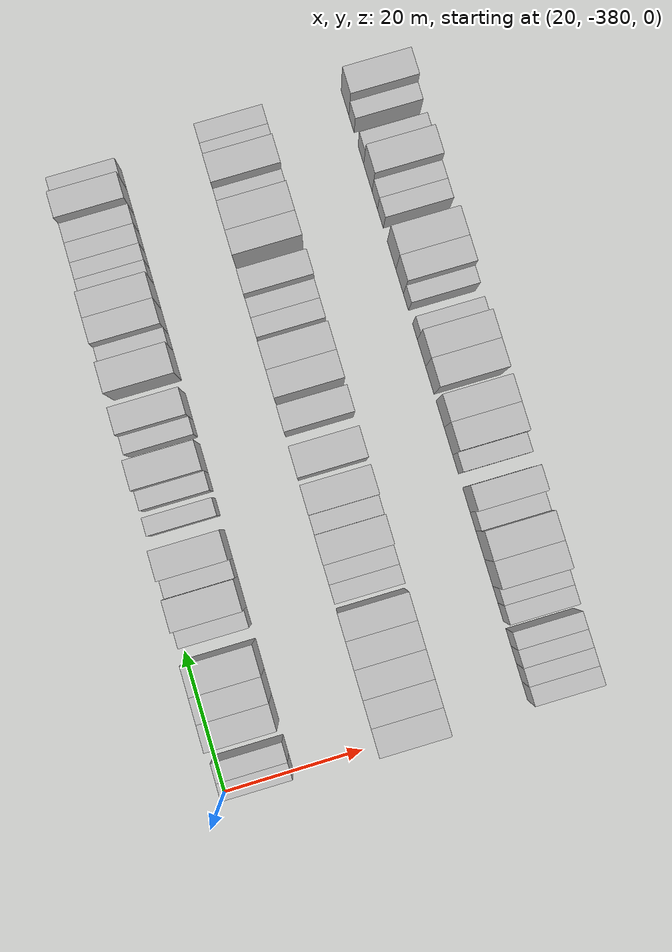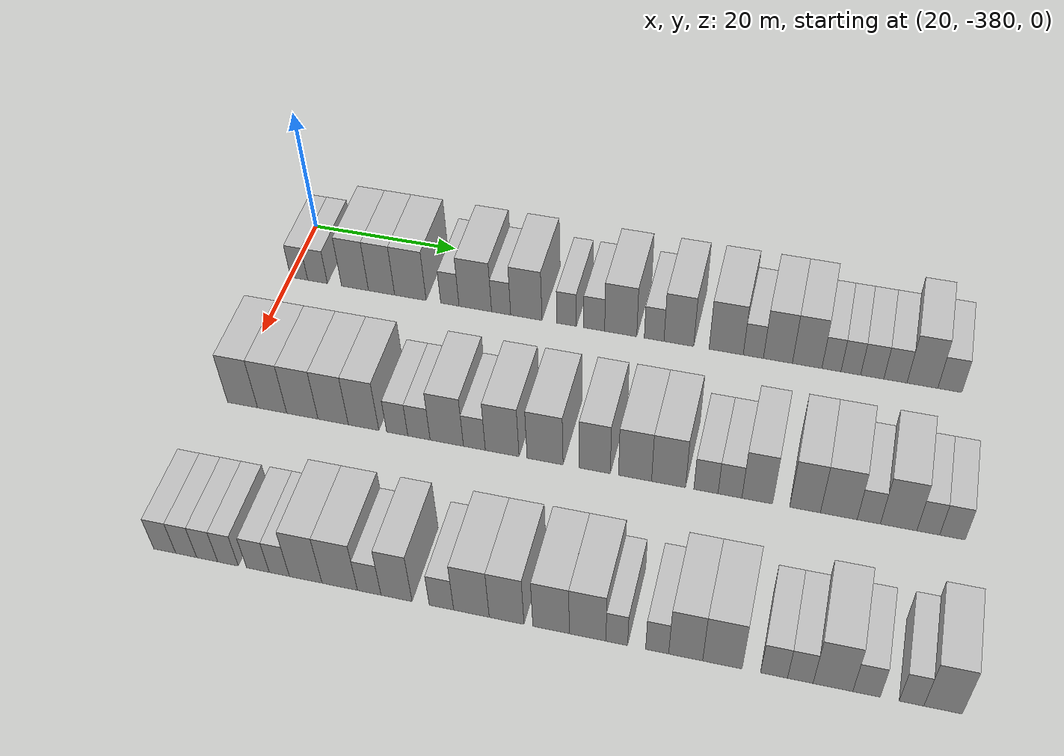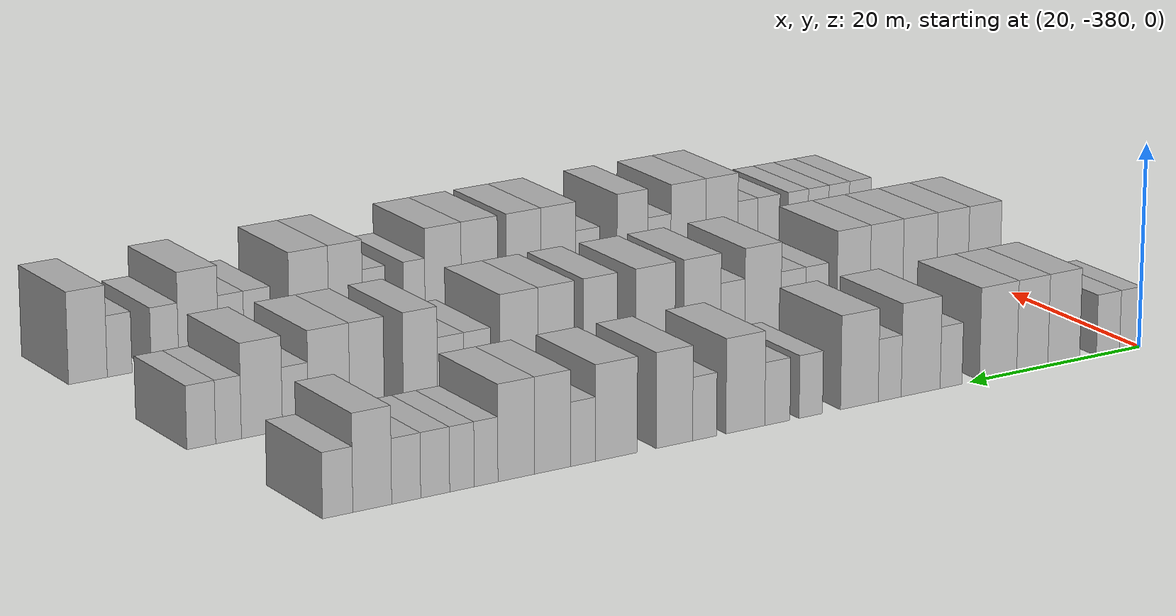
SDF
<sdf version="1.6">
 <world name="default">
  <model name="building_1">
   <static>1</static>
   <pose>25.0000 -378.7931 0 0.000000 0.000000 0.000000</pose>
   <link name="link">
    <pose>0 0 3.00 0 0 0</pose>
    <collision name="collision"><geometry><box><size>10.0000 2.4138 6.0000</size></box></geometry></collision>
    <visual name="visual">
     <cast_shadows>0</cast_shadows>
     <geometry><box><size>10.0000 2.4138 6.0000</size></box></geometry>
     <material>
      <script>
       <uri>model://HANNAS_wall/materials/scripts</uri>
       <uri>model://HANNAS_wall/materials/textures</uri>
       <name>vrc/HANNAS_wall</name>
      </script>
     </material>
    </visual>
   </link>
  </model>
  <model name="building_2">
   <static>1</static>
   <pose>25.0000 -376.1967 0 0.000000 0.000000 0.000000</pose>
   <link name="link">
    <pose>0 0 3.00 0 0 0</pose>
    <collision name="collision"><geometry><box><size>10.0000 2.7790 6.0000</size></box></geometry></collision>
    <visual name="visual">
     <cast_shadows>0</cast_shadows>
     <geometry><box><size>10.0000 2.7790 6.0000</size></box></geometry>
     <material>
      <script>
       <uri>model://HANNAS_wall/materials/scripts</uri>
       <uri>model://HANNAS_wall/materials/textures</uri>
       <name>vrc/HANNAS_wall</name>
      </script>
     </material>
    </visual>
   </link>
  </model>
  <model name="building_3">
   <static>1</static>
   <pose>25.0000 -370.9243 0 0.000000 0.000000 0.000000</pose>
   <link name="link">
    <pose>0 0 4.50 0 0 0</pose>
    <collision name="collision"><geometry><box><size>10.0000 3.7657 9.0000</size></box></geometry></collision>
    <visual name="visual">
     <cast_shadows>0</cast_shadows>
     <geometry><box><size>10.0000 3.7657 9.0000</size></box></geometry>
     <material>
      <script>
       <uri>model://HANNAS_wall/materials/scripts</uri>
       <uri>model://HANNAS_wall/materials/textures</uri>
       <name>vrc/HANNAS_wall</name>
      </script>
     </material>
    </visual>
   </link>
  </model>
  <model name="building_4">
   <static>1</static>
   <pose>25.0000 -367.2173 0 0.000000 0.000000 0.000000</pose>
   <link name="link">
    <pose>0 0 4.50 0 0 0</pose>
    <collision name="collision"><geometry><box><size>10.0000 3.6483 9.0000</size></box></geometry></collision>
    <visual name="visual">
     <cast_shadows>0</cast_shadows>
     <geometry><box><size>10.0000 3.6483 9.0000</size></box></geometry>
     <material>
      <script>
       <uri>model://HANNAS_wall/materials/scripts</uri>
       <uri>model://HANNAS_wall/materials/textures</uri>
       <name>vrc/HANNAS_wall</name>
      </script>
     </material>
    </visual>
   </link>
  </model>
  <model name="building_5">
   <static>1</static>
   <pose>25.0000 -363.2170 0 0.000000 0.000000 0.000000</pose>
   <link name="link">
    <pose>0 0 4.50 0 0 0</pose>
    <collision name="collision"><geometry><box><size>10.0000 4.3523 9.0000</size></box></geometry></collision>
    <visual name="visual">
     <cast_shadows>0</cast_shadows>
     <geometry><box><size>10.0000 4.3523 9.0000</size></box></geometry>
     <material>
      <script>
       <uri>model://HANNAS_wall/materials/scripts</uri>
       <uri>model://HANNAS_wall/materials/textures</uri>
       <name>vrc/HANNAS_wall</name>
      </script>
     </material>
    </visual>
   </link>
  </model>
  <model name="building_6">
   <static>1</static>
   <pose>25.0000 -357.7842 0 0.000000 0.000000 0.000000</pose>
   <link name="link">
    <pose>0 0 3.00 0 0 0</pose>
    <collision name="collision"><geometry><box><size>10.0000 2.5133 6.0000</size></box></geometry></collision>
    <visual name="visual">
     <cast_shadows>0</cast_shadows>
     <geometry><box><size>10.0000 2.5133 6.0000</size></box></geometry>
     <material>
      <script>
       <uri>model://HANNAS_wall/materials/scripts</uri>
       <uri>model://HANNAS_wall/materials/textures</uri>
       <name>vrc/HANNAS_wall</name>
      </script>
     </material>
    </visual>
   </link>
  </model>
  <model name="building_7">
   <static>1</static>
   <pose>25.0000 -354.3040 0 0.000000 0.000000 0.000000</pose>
   <link name="link">
    <pose>0 0 4.50 0 0 0</pose>
    <collision name="collision"><geometry><box><size>10.0000 4.4470 9.0000</size></box></geometry></collision>
    <visual name="visual">
     <cast_shadows>0</cast_shadows>
     <geometry><box><size>10.0000 4.4470 9.0000</size></box></geometry>
     <material>
      <script>
       <uri>model://HANNAS_wall/materials/scripts</uri>
       <uri>model://HANNAS_wall/materials/textures</uri>
       <name>vrc/HANNAS_wall</name>
      </script>
     </material>
    </visual>
   </link>
  </model>
  <model name="building_8">
   <static>1</static>
   <pose>25.0000 -350.7856 0 0.000000 0.000000 0.000000</pose>
   <link name="link">
    <pose>0 0 3.00 0 0 0</pose>
    <collision name="collision"><geometry><box><size>10.0000 2.5899 6.0000</size></box></geometry></collision>
    <visual name="visual">
     <cast_shadows>0</cast_shadows>
     <geometry><box><size>10.0000 2.5899 6.0000</size></box></geometry>
     <material>
      <script>
       <uri>model://HANNAS_wall/materials/scripts</uri>
       <uri>model://HANNAS_wall/materials/textures</uri>
       <name>vrc/HANNAS_wall</name>
      </script>
     </material>
    </visual>
   </link>
  </model>
  <model name="building_9">
   <static>1</static>
   <pose>25.0000 -347.3726 0 0.000000 0.000000 0.000000</pose>
   <link name="link">
    <pose>0 0 4.50 0 0 0</pose>
    <collision name="collision"><geometry><box><size>10.0000 4.2361 9.0000</size></box></geometry></collision>
    <visual name="visual">
     <cast_shadows>0</cast_shadows>
     <geometry><box><size>10.0000 4.2361 9.0000</size></box></geometry>
     <material>
      <script>
       <uri>model://HANNAS_wall/materials/scripts</uri>
       <uri>model://HANNAS_wall/materials/textures</uri>
       <name>vrc/HANNAS_wall</name>
      </script>
     </material>
    </visual>
   </link>
  </model>
  <model name="building_10">
   <static>1</static>
   <pose>25.0000 -341.9552 0 0.000000 0.000000 0.000000</pose>
   <link name="link">
    <pose>0 0 3.00 0 0 0</pose>
    <collision name="collision"><geometry><box><size>10.0000 2.5986 6.0000</size></box></geometry></collision>
    <visual name="visual">
     <cast_shadows>0</cast_shadows>
     <geometry><box><size>10.0000 2.5986 6.0000</size></box></geometry>
     <material>
      <script>
       <uri>model://HANNAS_wall/materials/scripts</uri>
       <uri>model://HANNAS_wall/materials/textures</uri>
       <name>vrc/HANNAS_wall</name>
      </script>
     </material>
    </visual>
   </link>
  </model>
  <model name="building_11">
   <static>1</static>
   <pose>25.0000 -338.2738 0 0.000000 0.000000 0.000000</pose>
   <link name="link">
    <pose>0 0 3.00 0 0 0</pose>
    <collision name="collision"><geometry><box><size>10.0000 2.7642 6.0000</size></box></geometry></collision>
    <visual name="visual">
     <cast_shadows>0</cast_shadows>
     <geometry><box><size>10.0000 2.7642 6.0000</size></box></geometry>
     <material>
      <script>
       <uri>model://HANNAS_wall/materials/scripts</uri>
       <uri>model://HANNAS_wall/materials/textures</uri>
       <name>vrc/HANNAS_wall</name>
      </script>
     </material>
    </visual>
   </link>
  </model>
  <model name="building_12">
   <static>1</static>
   <pose>25.0000 -334.7722 0 0.000000 0.000000 0.000000</pose>
   <link name="link">
    <pose>0 0 4.50 0 0 0</pose>
    <collision name="collision"><geometry><box><size>10.0000 4.2390 9.0000</size></box></geometry></collision>
    <visual name="visual">
     <cast_shadows>0</cast_shadows>
     <geometry><box><size>10.0000 4.2390 9.0000</size></box></geometry>
     <material>
      <script>
       <uri>model://HANNAS_wall/materials/scripts</uri>
       <uri>model://HANNAS_wall/materials/textures</uri>
       <name>vrc/HANNAS_wall</name>
      </script>
     </material>
    </visual>
   </link>
  </model>
  <model name="building_13">
   <static>1</static>
   <pose>25.0000 -330.3623 0 0.000000 0.000000 0.000000</pose>
   <link name="link">
    <pose>0 0 3.00 0 0 0</pose>
    <collision name="collision"><geometry><box><size>10.0000 2.5808 6.0000</size></box></geometry></collision>
    <visual name="visual">
     <cast_shadows>0</cast_shadows>
     <geometry><box><size>10.0000 2.5808 6.0000</size></box></geometry>
     <material>
      <script>
       <uri>model://HANNAS_wall/materials/scripts</uri>
       <uri>model://HANNAS_wall/materials/textures</uri>
       <name>vrc/HANNAS_wall</name>
      </script>
     </material>
    </visual>
   </link>
  </model>
  <model name="building_14">
   <static>1</static>
   <pose>25.0000 -327.1281 0 0.000000 0.000000 0.000000</pose>
   <link name="link">
    <pose>0 0 4.50 0 0 0</pose>
    <collision name="collision"><geometry><box><size>10.0000 3.8875 9.0000</size></box></geometry></collision>
    <visual name="visual">
     <cast_shadows>0</cast_shadows>
     <geometry><box><size>10.0000 3.8875 9.0000</size></box></geometry>
     <material>
      <script>
       <uri>model://HANNAS_wall/materials/scripts</uri>
       <uri>model://HANNAS_wall/materials/textures</uri>
       <name>vrc/HANNAS_wall</name>
      </script>
     </material>
    </visual>
   </link>
  </model>
  <model name="building_15">
   <static>1</static>
   <pose>25.0000 -320.9726 0 0.000000 0.000000 0.000000</pose>
   <link name="link">
    <pose>0 0 4.50 0 0 0</pose>
    <collision name="collision"><geometry><box><size>10.0000 4.4236 9.0000</size></box></geometry></collision>
    <visual name="visual">
     <cast_shadows>0</cast_shadows>
     <geometry><box><size>10.0000 4.4236 9.0000</size></box></geometry>
     <material>
      <script>
       <uri>model://HANNAS_wall/materials/scripts</uri>
       <uri>model://HANNAS_wall/materials/textures</uri>
       <name>vrc/HANNAS_wall</name>
      </script>
     </material>
    </visual>
   </link>
  </model>
  <model name="building_16">
   <static>1</static>
   <pose>25.0000 -317.4612 0 0.000000 0.000000 0.000000</pose>
   <link name="link">
    <pose>0 0 3.00 0 0 0</pose>
    <collision name="collision"><geometry><box><size>10.0000 2.5991 6.0000</size></box></geometry></collision>
    <visual name="visual">
     <cast_shadows>0</cast_shadows>
     <geometry><box><size>10.0000 2.5991 6.0000</size></box></geometry>
     <material>
      <script>
       <uri>model://HANNAS_wall/materials/scripts</uri>
       <uri>model://HANNAS_wall/materials/textures</uri>
       <name>vrc/HANNAS_wall</name>
      </script>
     </material>
    </visual>
   </link>
  </model>
  <model name="building_17">
   <static>1</static>
   <pose>25.0000 -314.3084 0 0.000000 0.000000 0.000000</pose>
   <link name="link">
    <pose>0 0 4.50 0 0 0</pose>
    <collision name="collision"><geometry><box><size>10.0000 3.7064 9.0000</size></box></geometry></collision>
    <visual name="visual">
     <cast_shadows>0</cast_shadows>
     <geometry><box><size>10.0000 3.7064 9.0000</size></box></geometry>
     <material>
      <script>
       <uri>model://HANNAS_wall/materials/scripts</uri>
       <uri>model://HANNAS_wall/materials/textures</uri>
       <name>vrc/HANNAS_wall</name>
      </script>
     </material>
    </visual>
   </link>
  </model>
  <model name="building_18">
   <static>1</static>
   <pose>25.0000 -310.5778 0 0.000000 0.000000 0.000000</pose>
   <link name="link">
    <pose>0 0 4.50 0 0 0</pose>
    <collision name="collision"><geometry><box><size>10.0000 3.7548 9.0000</size></box></geometry></collision>
    <visual name="visual">
     <cast_shadows>0</cast_shadows>
     <geometry><box><size>10.0000 3.7548 9.0000</size></box></geometry>
     <material>
      <script>
       <uri>model://HANNAS_wall/materials/scripts</uri>
       <uri>model://HANNAS_wall/materials/textures</uri>
       <name>vrc/HANNAS_wall</name>
      </script>
     </material>
    </visual>
   </link>
  </model>
  <model name="building_19">
   <static>1</static>
   <pose>25.0000 -307.4906 0 0.000000 0.000000 0.000000</pose>
   <link name="link">
    <pose>0 0 3.00 0 0 0</pose>
    <collision name="collision"><geometry><box><size>10.0000 2.4198 6.0000</size></box></geometry></collision>
    <visual name="visual">
     <cast_shadows>0</cast_shadows>
     <geometry><box><size>10.0000 2.4198 6.0000</size></box></geometry>
     <material>
      <script>
       <uri>model://HANNAS_wall/materials/scripts</uri>
       <uri>model://HANNAS_wall/materials/textures</uri>
       <name>vrc/HANNAS_wall</name>
      </script>
     </material>
    </visual>
   </link>
  </model>
  <model name="building_20">
   <static>1</static>
   <pose>25.0000 -305.0435 0 0.000000 0.000000 0.000000</pose>
   <link name="link">
    <pose>0 0 3.00 0 0 0</pose>
    <collision name="collision"><geometry><box><size>10.0000 2.4743 6.0000</size></box></geometry></collision>
    <visual name="visual">
     <cast_shadows>0</cast_shadows>
     <geometry><box><size>10.0000 2.4743 6.0000</size></box></geometry>
     <material>
      <script>
       <uri>model://HANNAS_wall/materials/scripts</uri>
       <uri>model://HANNAS_wall/materials/textures</uri>
       <name>vrc/HANNAS_wall</name>
      </script>
     </material>
    </visual>
   </link>
  </model>
  <model name="building_21">
   <static>1</static>
   <pose>25.0000 -302.3490 0 0.000000 0.000000 0.000000</pose>
   <link name="link">
    <pose>0 0 3.00 0 0 0</pose>
    <collision name="collision"><geometry><box><size>10.0000 2.9148 6.0000</size></box></geometry></collision>
    <visual name="visual">
     <cast_shadows>0</cast_shadows>
     <geometry><box><size>10.0000 2.9148 6.0000</size></box></geometry>
     <material>
      <script>
       <uri>model://HANNAS_wall/materials/scripts</uri>
       <uri>model://HANNAS_wall/materials/textures</uri>
       <name>vrc/HANNAS_wall</name>
      </script>
     </material>
    </visual>
   </link>
  </model>
  <model name="building_22">
   <static>1</static>
   <pose>25.0000 -299.4433 0 0.000000 0.000000 0.000000</pose>
   <link name="link">
    <pose>0 0 3.00 0 0 0</pose>
    <collision name="collision"><geometry><box><size>10.0000 2.8966 6.0000</size></box></geometry></collision>
    <visual name="visual">
     <cast_shadows>0</cast_shadows>
     <geometry><box><size>10.0000 2.8966 6.0000</size></box></geometry>
     <material>
      <script>
       <uri>model://HANNAS_wall/materials/scripts</uri>
       <uri>model://HANNAS_wall/materials/textures</uri>
       <name>vrc/HANNAS_wall</name>
      </script>
     </material>
    </visual>
   </link>
  </model>
  <model name="building_23">
   <static>1</static>
   <pose>25.0000 -296.0758 0 0.000000 0.000000 0.000000</pose>
   <link name="link">
    <pose>0 0 4.50 0 0 0</pose>
    <collision name="collision"><geometry><box><size>10.0000 3.8385 9.0000</size></box></geometry></collision>
    <visual name="visual">
     <cast_shadows>0</cast_shadows>
     <geometry><box><size>10.0000 3.8385 9.0000</size></box></geometry>
     <material>
      <script>
       <uri>model://HANNAS_wall/materials/scripts</uri>
       <uri>model://HANNAS_wall/materials/textures</uri>
       <name>vrc/HANNAS_wall</name>
      </script>
     </material>
    </visual>
   </link>
  </model>
  <model name="building_24">
   <static>1</static>
   <pose>25.0000 -292.6682 0 0.000000 0.000000 0.000000</pose>
   <link name="link">
    <pose>0 0 3.00 0 0 0</pose>
    <collision name="collision"><geometry><box><size>10.0000 2.9766 6.0000</size></box></geometry></collision>
    <visual name="visual">
     <cast_shadows>0</cast_shadows>
     <geometry><box><size>10.0000 2.9766 6.0000</size></box></geometry>
     <material>
      <script>
       <uri>model://HANNAS_wall/materials/scripts</uri>
       <uri>model://HANNAS_wall/materials/textures</uri>
       <name>vrc/HANNAS_wall</name>
      </script>
     </material>
    </visual>
   </link>
  </model>
  <model name="building_200">
   <static>1</static>
   <pose>47.0000 -378.0258 0 0.000000 0.000000 0.000000</pose>
   <link name="link">
    <pose>0 0 4.50 0 0 0</pose>
    <collision name="collision"><geometry><box><size>10.0000 3.9483 9.0000</size></box></geometry></collision>
    <visual name="visual">
     <cast_shadows>0</cast_shadows>
     <geometry><box><size>10.0000 3.9483 9.0000</size></box></geometry>
     <material>
      <script>
       <uri>model://HANNAS_wall/materials/scripts</uri>
       <uri>model://HANNAS_wall/materials/textures</uri>
       <name>vrc/HANNAS_wall</name>
      </script>
     </material>
    </visual>
   </link>
  </model>
  <model name="building_201">
   <static>1</static>
   <pose>47.0000 -374.1408 0 0.000000 0.000000 0.000000</pose>
   <link name="link">
    <pose>0 0 4.50 0 0 0</pose>
    <collision name="collision"><geometry><box><size>10.0000 3.8217 9.0000</size></box></geometry></collision>
    <visual name="visual">
     <cast_shadows>0</cast_shadows>
     <geometry><box><size>10.0000 3.8217 9.0000</size></box></geometry>
     <material>
      <script>
       <uri>model://HANNAS_wall/materials/scripts</uri>
       <uri>model://HANNAS_wall/materials/textures</uri>
       <name>vrc/HANNAS_wall</name>
      </script>
     </material>
    </visual>
   </link>
  </model>
  <model name="building_202">
   <static>1</static>
   <pose>47.0000 -370.1857 0 0.000000 0.000000 0.000000</pose>
   <link name="link">
    <pose>0 0 4.50 0 0 0</pose>
    <collision name="collision"><geometry><box><size>10.0000 4.0884 9.0000</size></box></geometry></collision>
    <visual name="visual">
     <cast_shadows>0</cast_shadows>
     <geometry><box><size>10.0000 4.0884 9.0000</size></box></geometry>
     <material>
      <script>
       <uri>model://HANNAS_wall/materials/scripts</uri>
       <uri>model://HANNAS_wall/materials/textures</uri>
       <name>vrc/HANNAS_wall</name>
      </script>
     </material>
    </visual>
   </link>
  </model>
  <model name="building_203">
   <static>1</static>
   <pose>47.0000 -366.1800 0 0.000000 0.000000 0.000000</pose>
   <link name="link">
    <pose>0 0 4.50 0 0 0</pose>
    <collision name="collision"><geometry><box><size>10.0000 3.9230 9.0000</size></box></geometry></collision>
    <visual name="visual">
     <cast_shadows>0</cast_shadows>
     <geometry><box><size>10.0000 3.9230 9.0000</size></box></geometry>
     <material>
      <script>
       <uri>model://HANNAS_wall/materials/scripts</uri>
       <uri>model://HANNAS_wall/materials/textures</uri>
       <name>vrc/HANNAS_wall</name>
      </script>
     </material>
    </visual>
   </link>
  </model>
  <model name="building_204">
   <static>1</static>
   <pose>47.0000 -362.2581 0 0.000000 0.000000 0.000000</pose>
   <link name="link">
    <pose>0 0 4.50 0 0 0</pose>
    <collision name="collision"><geometry><box><size>10.0000 3.9207 9.0000</size></box></geometry></collision>
    <visual name="visual">
     <cast_shadows>0</cast_shadows>
     <geometry><box><size>10.0000 3.9207 9.0000</size></box></geometry>
     <material>
      <script>
       <uri>model://HANNAS_wall/materials/scripts</uri>
       <uri>model://HANNAS_wall/materials/textures</uri>
       <name>vrc/HANNAS_wall</name>
      </script>
     </material>
    </visual>
   </link>
  </model>
  <model name="building_205">
   <static>1</static>
   <pose>47.0000 -357.9490 0 0.000000 0.000000 0.000000</pose>
   <link name="link">
    <pose>0 0 3.00 0 0 0</pose>
    <collision name="collision"><geometry><box><size>10.0000 2.6976 6.0000</size></box></geometry></collision>
    <visual name="visual">
     <cast_shadows>0</cast_shadows>
     <geometry><box><size>10.0000 2.6976 6.0000</size></box></geometry>
     <material>
      <script>
       <uri>model://HANNAS_wall/materials/scripts</uri>
       <uri>model://HANNAS_wall/materials/textures</uri>
       <name>vrc/HANNAS_wall</name>
      </script>
     </material>
    </visual>
   </link>
  </model>
  <model name="building_206">
   <static>1</static>
   <pose>47.0000 -355.1785 0 0.000000 0.000000 0.000000</pose>
   <link name="link">
    <pose>0 0 3.00 0 0 0</pose>
    <collision name="collision"><geometry><box><size>10.0000 2.8433 6.0000</size></box></geometry></collision>
    <visual name="visual">
     <cast_shadows>0</cast_shadows>
     <geometry><box><size>10.0000 2.8433 6.0000</size></box></geometry>
     <material>
      <script>
       <uri>model://HANNAS_wall/materials/scripts</uri>
       <uri>model://HANNAS_wall/materials/textures</uri>
       <name>vrc/HANNAS_wall</name>
      </script>
     </material>
    </visual>
   </link>
  </model>
  <model name="building_207">
   <static>1</static>
   <pose>47.0000 -351.6575 0 0.000000 0.000000 0.000000</pose>
   <link name="link">
    <pose>0 0 4.50 0 0 0</pose>
    <collision name="collision"><geometry><box><size>10.0000 4.1989 9.0000</size></box></geometry></collision>
    <visual name="visual">
     <cast_shadows>0</cast_shadows>
     <geometry><box><size>10.0000 4.1989 9.0000</size></box></geometry>
     <material>
      <script>
       <uri>model://HANNAS_wall/materials/scripts</uri>
       <uri>model://HANNAS_wall/materials/textures</uri>
       <name>vrc/HANNAS_wall</name>
      </script>
     </material>
    </visual>
   </link>
  </model>
  <model name="building_208">
   <static>1</static>
   <pose>47.0000 -348.1816 0 0.000000 0.000000 0.000000</pose>
   <link name="link">
    <pose>0 0 3.00 0 0 0</pose>
    <collision name="collision"><geometry><box><size>10.0000 2.7529 6.0000</size></box></geometry></collision>
    <visual name="visual">
     <cast_shadows>0</cast_shadows>
     <geometry><box><size>10.0000 2.7529 6.0000</size></box></geometry>
     <material>
      <script>
       <uri>model://HANNAS_wall/materials/scripts</uri>
       <uri>model://HANNAS_wall/materials/textures</uri>
       <name>vrc/HANNAS_wall</name>
      </script>
     </material>
    </visual>
   </link>
  </model>
  <model name="building_209">
   <static>1</static>
   <pose>47.0000 -344.7022 0 0.000000 0.000000 0.000000</pose>
   <link name="link">
    <pose>0 0 4.50 0 0 0</pose>
    <collision name="collision"><geometry><box><size>10.0000 4.2060 9.0000</size></box></geometry></collision>
    <visual name="visual">
     <cast_shadows>0</cast_shadows>
     <geometry><box><size>10.0000 4.2060 9.0000</size></box></geometry>
     <material>
      <script>
       <uri>model://HANNAS_wall/materials/scripts</uri>
       <uri>model://HANNAS_wall/materials/textures</uri>
       <name>vrc/HANNAS_wall</name>
      </script>
     </material>
    </visual>
   </link>
  </model>
  <model name="building_210">
   <static>1</static>
   <pose>47.0000 -339.3726 0 0.000000 0.000000 0.000000</pose>
   <link name="link">
    <pose>0 0 4.50 0 0 0</pose>
    <collision name="collision"><geometry><box><size>10.0000 4.4530 9.0000</size></box></geometry></collision>
    <visual name="visual">
     <cast_shadows>0</cast_shadows>
     <geometry><box><size>10.0000 4.4530 9.0000</size></box></geometry>
     <material>
      <script>
       <uri>model://HANNAS_wall/materials/scripts</uri>
       <uri>model://HANNAS_wall/materials/textures</uri>
       <name>vrc/HANNAS_wall</name>
      </script>
     </material>
    </visual>
   </link>
  </model>
  <model name="building_211">
   <static>1</static>
   <pose>47.0000 -333.2516 0 0.000000 0.000000 0.000000</pose>
   <link name="link">
    <pose>0 0 4.50 0 0 0</pose>
    <collision name="collision"><geometry><box><size>10.0000 3.7890 9.0000</size></box></geometry></collision>
    <visual name="visual">
     <cast_shadows>0</cast_shadows>
     <geometry><box><size>10.0000 3.7890 9.0000</size></box></geometry>
     <material>
      <script>
       <uri>model://HANNAS_wall/materials/scripts</uri>
       <uri>model://HANNAS_wall/materials/textures</uri>
       <name>vrc/HANNAS_wall</name>
      </script>
     </material>
    </visual>
   </link>
  </model>
  <model name="building_212">
   <static>1</static>
   <pose>47.0000 -328.3529 0 0.000000 0.000000 0.000000</pose>
   <link name="link">
    <pose>0 0 4.50 0 0 0</pose>
    <collision name="collision"><geometry><box><size>10.0000 4.0085 9.0000</size></box></geometry></collision>
    <visual name="visual">
     <cast_shadows>0</cast_shadows>
     <geometry><box><size>10.0000 4.0085 9.0000</size></box></geometry>
     <material>
      <script>
       <uri>model://HANNAS_wall/materials/scripts</uri>
       <uri>model://HANNAS_wall/materials/textures</uri>
       <name>vrc/HANNAS_wall</name>
      </script>
     </material>
    </visual>
   </link>
  </model>
  <model name="building_213">
   <static>1</static>
   <pose>47.0000 -324.3022 0 0.000000 0.000000 0.000000</pose>
   <link name="link">
    <pose>0 0 4.50 0 0 0</pose>
    <collision name="collision"><geometry><box><size>10.0000 4.0928 9.0000</size></box></geometry></collision>
    <visual name="visual">
     <cast_shadows>0</cast_shadows>
     <geometry><box><size>10.0000 4.0928 9.0000</size></box></geometry>
     <material>
      <script>
       <uri>model://HANNAS_wall/materials/scripts</uri>
       <uri>model://HANNAS_wall/materials/textures</uri>
       <name>vrc/HANNAS_wall</name>
      </script>
     </material>
    </visual>
   </link>
  </model>
  <model name="building_214">
   <static>1</static>
   <pose>47.0000 -319.8097 0 0.000000 0.000000 0.000000</pose>
   <link name="link">
    <pose>0 0 3.00 0 0 0</pose>
    <collision name="collision"><geometry><box><size>10.0000 2.8923 6.0000</size></box></geometry></collision>
    <visual name="visual">
     <cast_shadows>0</cast_shadows>
     <geometry><box><size>10.0000 2.8923 6.0000</size></box></geometry>
     <material>
      <script>
       <uri>model://HANNAS_wall/materials/scripts</uri>
       <uri>model://HANNAS_wall/materials/textures</uri>
       <name>vrc/HANNAS_wall</name>
      </script>
     </material>
    </visual>
   </link>
  </model>
  <model name="building_215">
   <static>1</static>
   <pose>47.0000 -316.9460 0 0.000000 0.000000 0.000000</pose>
   <link name="link">
    <pose>0 0 3.00 0 0 0</pose>
    <collision name="collision"><geometry><box><size>10.0000 2.8351 6.0000</size></box></geometry></collision>
    <visual name="visual">
     <cast_shadows>0</cast_shadows>
     <geometry><box><size>10.0000 2.8351 6.0000</size></box></geometry>
     <material>
      <script>
       <uri>model://HANNAS_wall/materials/scripts</uri>
       <uri>model://HANNAS_wall/materials/textures</uri>
       <name>vrc/HANNAS_wall</name>
      </script>
     </material>
    </visual>
   </link>
  </model>
  <model name="building_216">
   <static>1</static>
   <pose>47.0000 -313.7092 0 0.000000 0.000000 0.000000</pose>
   <link name="link">
    <pose>0 0 4.50 0 0 0</pose>
    <collision name="collision"><geometry><box><size>10.0000 3.6384 9.0000</size></box></geometry></collision>
    <visual name="visual">
     <cast_shadows>0</cast_shadows>
     <geometry><box><size>10.0000 3.6384 9.0000</size></box></geometry>
     <material>
      <script>
       <uri>model://HANNAS_wall/materials/scripts</uri>
       <uri>model://HANNAS_wall/materials/textures</uri>
       <name>vrc/HANNAS_wall</name>
      </script>
     </material>
    </visual>
   </link>
  </model>
  <model name="building_217">
   <static>1</static>
   <pose>47.0000 -308.0866 0 0.000000 0.000000 0.000000</pose>
   <link name="link">
    <pose>0 0 4.50 0 0 0</pose>
    <collision name="collision"><geometry><box><size>10.0000 3.6069 9.0000</size></box></geometry></collision>
    <visual name="visual">
     <cast_shadows>0</cast_shadows>
     <geometry><box><size>10.0000 3.6069 9.0000</size></box></geometry>
     <material>
      <script>
       <uri>model://HANNAS_wall/materials/scripts</uri>
       <uri>model://HANNAS_wall/materials/textures</uri>
       <name>vrc/HANNAS_wall</name>
      </script>
     </material>
    </visual>
   </link>
  </model>
  <model name="building_218">
   <static>1</static>
   <pose>47.0000 -304.1395 0 0.000000 0.000000 0.000000</pose>
   <link name="link">
    <pose>0 0 4.50 0 0 0</pose>
    <collision name="collision"><geometry><box><size>10.0000 4.2872 9.0000</size></box></geometry></collision>
    <visual name="visual">
     <cast_shadows>0</cast_shadows>
     <geometry><box><size>10.0000 4.2872 9.0000</size></box></geometry>
     <material>
      <script>
       <uri>model://HANNAS_wall/materials/scripts</uri>
       <uri>model://HANNAS_wall/materials/textures</uri>
       <name>vrc/HANNAS_wall</name>
      </script>
     </material>
    </visual>
   </link>
  </model>
  <model name="building_219">
   <static>1</static>
   <pose>47.0000 -300.6557 0 0.000000 0.000000 0.000000</pose>
   <link name="link">
    <pose>0 0 3.00 0 0 0</pose>
    <collision name="collision"><geometry><box><size>10.0000 2.6805 6.0000</size></box></geometry></collision>
    <visual name="visual">
     <cast_shadows>0</cast_shadows>
     <geometry><box><size>10.0000 2.6805 6.0000</size></box></geometry>
     <material>
      <script>
       <uri>model://HANNAS_wall/materials/scripts</uri>
       <uri>model://HANNAS_wall/materials/textures</uri>
       <name>vrc/HANNAS_wall</name>
      </script>
     </material>
    </visual>
   </link>
  </model>
  <model name="building_220">
   <static>1</static>
   <pose>47.0000 -297.2175 0 0.000000 0.000000 0.000000</pose>
   <link name="link">
    <pose>0 0 4.50 0 0 0</pose>
    <collision name="collision"><geometry><box><size>10.0000 4.1959 9.0000</size></box></geometry></collision>
    <visual name="visual">
     <cast_shadows>0</cast_shadows>
     <geometry><box><size>10.0000 4.1959 9.0000</size></box></geometry>
     <material>
      <script>
       <uri>model://HANNAS_wall/materials/scripts</uri>
       <uri>model://HANNAS_wall/materials/textures</uri>
       <name>vrc/HANNAS_wall</name>
      </script>
     </material>
    </visual>
   </link>
  </model>
  <model name="building_221">
   <static>1</static>
   <pose>47.0000 -293.8175 0 0.000000 0.000000 0.000000</pose>
   <link name="link">
    <pose>0 0 3.00 0 0 0</pose>
    <collision name="collision"><geometry><box><size>10.0000 2.6041 6.0000</size></box></geometry></collision>
    <visual name="visual">
     <cast_shadows>0</cast_shadows>
     <geometry><box><size>10.0000 2.6041 6.0000</size></box></geometry>
     <material>
      <script>
       <uri>model://HANNAS_wall/materials/scripts</uri>
       <uri>model://HANNAS_wall/materials/textures</uri>
       <name>vrc/HANNAS_wall</name>
      </script>
     </material>
    </visual>
   </link>
  </model>
  <model name="building_222">
   <static>1</static>
   <pose>47.0000 -291.0629 0 0.000000 0.000000 0.000000</pose>
   <link name="link">
    <pose>0 0 3.00 0 0 0</pose>
    <collision name="collision"><geometry><box><size>10.0000 2.9050 6.0000</size></box></geometry></collision>
    <visual name="visual">
     <cast_shadows>0</cast_shadows>
     <geometry><box><size>10.0000 2.9050 6.0000</size></box></geometry>
     <material>
      <script>
       <uri>model://HANNAS_wall/materials/scripts</uri>
       <uri>model://HANNAS_wall/materials/textures</uri>
       <name>vrc/HANNAS_wall</name>
      </script>
     </material>
    </visual>
   </link>
  </model>
  <model name="building_397">
   <static>1</static>
   <pose>69.0000 -378.6534 0 0.000000 0.000000 0.000000</pose>
   <link name="link">
    <pose>0 0 3.00 0 0 0</pose>
    <collision name="collision"><geometry><box><size>10.0000 2.6932 6.0000</size></box></geometry></collision>
    <visual name="visual">
     <cast_shadows>0</cast_shadows>
     <geometry><box><size>10.0000 2.6932 6.0000</size></box></geometry>
     <material>
      <script>
       <uri>model://HANNAS_wall/materials/scripts</uri>
       <uri>model://HANNAS_wall/materials/textures</uri>
       <name>vrc/HANNAS_wall</name>
      </script>
     </material>
    </visual>
   </link>
  </model>
  <model name="building_398">
   <static>1</static>
   <pose>69.0000 -376.0277 0 0.000000 0.000000 0.000000</pose>
   <link name="link">
    <pose>0 0 3.00 0 0 0</pose>
    <collision name="collision"><geometry><box><size>10.0000 2.5582 6.0000</size></box></geometry></collision>
    <visual name="visual">
     <cast_shadows>0</cast_shadows>
     <geometry><box><size>10.0000 2.5582 6.0000</size></box></geometry>
     <material>
      <script>
       <uri>model://HANNAS_wall/materials/scripts</uri>
       <uri>model://HANNAS_wall/materials/textures</uri>
       <name>vrc/HANNAS_wall</name>
      </script>
     </material>
    </visual>
   </link>
  </model>
  <model name="building_399">
   <static>1</static>
   <pose>69.0000 -373.4750 0 0.000000 0.000000 0.000000</pose>
   <link name="link">
    <pose>0 0 3.00 0 0 0</pose>
    <collision name="collision"><geometry><box><size>10.0000 2.5472 6.0000</size></box></geometry></collision>
    <visual name="visual">
     <cast_shadows>0</cast_shadows>
     <geometry><box><size>10.0000 2.5472 6.0000</size></box></geometry>
     <material>
      <script>
       <uri>model://HANNAS_wall/materials/scripts</uri>
       <uri>model://HANNAS_wall/materials/textures</uri>
       <name>vrc/HANNAS_wall</name>
      </script>
     </material>
    </visual>
   </link>
  </model>
  <model name="building_400">
   <static>1</static>
   <pose>69.0000 -370.9539 0 0.000000 0.000000 0.000000</pose>
   <link name="link">
    <pose>0 0 3.00 0 0 0</pose>
    <collision name="collision"><geometry><box><size>10.0000 2.4951 6.0000</size></box></geometry></collision>
    <visual name="visual">
     <cast_shadows>0</cast_shadows>
     <geometry><box><size>10.0000 2.4951 6.0000</size></box></geometry>
     <material>
      <script>
       <uri>model://HANNAS_wall/materials/scripts</uri>
       <uri>model://HANNAS_wall/materials/textures</uri>
       <name>vrc/HANNAS_wall</name>
      </script>
     </material>
    </visual>
   </link>
  </model>
  <model name="building_401">
   <static>1</static>
   <pose>69.0000 -367.3515 0 0.000000 0.000000 0.000000</pose>
   <link name="link">
    <pose>0 0 3.00 0 0 0</pose>
    <collision name="collision"><geometry><box><size>10.0000 2.7096 6.0000</size></box></geometry></collision>
    <visual name="visual">
     <cast_shadows>0</cast_shadows>
     <geometry><box><size>10.0000 2.7096 6.0000</size></box></geometry>
     <material>
      <script>
       <uri>model://HANNAS_wall/materials/scripts</uri>
       <uri>model://HANNAS_wall/materials/textures</uri>
       <name>vrc/HANNAS_wall</name>
      </script>
     </material>
    </visual>
   </link>
  </model>
  <model name="building_402">
   <static>1</static>
   <pose>69.0000 -364.7854 0 0.000000 0.000000 0.000000</pose>
   <link name="link">
    <pose>0 0 3.00 0 0 0</pose>
    <collision name="collision"><geometry><box><size>10.0000 2.4227 6.0000</size></box></geometry></collision>
    <visual name="visual">
     <cast_shadows>0</cast_shadows>
     <geometry><box><size>10.0000 2.4227 6.0000</size></box></geometry>
     <material>
      <script>
       <uri>model://HANNAS_wall/materials/scripts</uri>
       <uri>model://HANNAS_wall/materials/textures</uri>
       <name>vrc/HANNAS_wall</name>
      </script>
     </material>
    </visual>
   </link>
  </model>
  <model name="building_403">
   <static>1</static>
   <pose>69.0000 -361.6335 0 0.000000 0.000000 0.000000</pose>
   <link name="link">
    <pose>0 0 4.50 0 0 0</pose>
    <collision name="collision"><geometry><box><size>10.0000 3.8811 9.0000</size></box></geometry></collision>
    <visual name="visual">
     <cast_shadows>0</cast_shadows>
     <geometry><box><size>10.0000 3.8811 9.0000</size></box></geometry>
     <material>
      <script>
       <uri>model://HANNAS_wall/materials/scripts</uri>
       <uri>model://HANNAS_wall/materials/textures</uri>
       <name>vrc/HANNAS_wall</name>
      </script>
     </material>
    </visual>
   </link>
  </model>
  <model name="building_404">
   <static>1</static>
   <pose>69.0000 -357.5993 0 0.000000 0.000000 0.000000</pose>
   <link name="link">
    <pose>0 0 4.50 0 0 0</pose>
    <collision name="collision"><geometry><box><size>10.0000 4.1873 9.0000</size></box></geometry></collision>
    <visual name="visual">
     <cast_shadows>0</cast_shadows>
     <geometry><box><size>10.0000 4.1873 9.0000</size></box></geometry>
     <material>
      <script>
       <uri>model://HANNAS_wall/materials/scripts</uri>
       <uri>model://HANNAS_wall/materials/textures</uri>
       <name>vrc/HANNAS_wall</name>
      </script>
     </material>
    </visual>
   </link>
  </model>
  <model name="building_405">
   <static>1</static>
   <pose>69.0000 -354.1237 0 0.000000 0.000000 0.000000</pose>
   <link name="link">
    <pose>0 0 3.00 0 0 0</pose>
    <collision name="collision"><geometry><box><size>10.0000 2.7639 6.0000</size></box></geometry></collision>
    <visual name="visual">
     <cast_shadows>0</cast_shadows>
     <geometry><box><size>10.0000 2.7639 6.0000</size></box></geometry>
     <material>
      <script>
       <uri>model://HANNAS_wall/materials/scripts</uri>
       <uri>model://HANNAS_wall/materials/textures</uri>
       <name>vrc/HANNAS_wall</name>
      </script>
     </material>
    </visual>
   </link>
  </model>
  <model name="building_406">
   <static>1</static>
   <pose>69.0000 -350.9341 0 0.000000 0.000000 0.000000</pose>
   <link name="link">
    <pose>0 0 4.50 0 0 0</pose>
    <collision name="collision"><geometry><box><size>10.0000 3.6152 9.0000</size></box></geometry></collision>
    <visual name="visual">
     <cast_shadows>0</cast_shadows>
     <geometry><box><size>10.0000 3.6152 9.0000</size></box></geometry>
     <material>
      <script>
       <uri>model://HANNAS_wall/materials/scripts</uri>
       <uri>model://HANNAS_wall/materials/textures</uri>
       <name>vrc/HANNAS_wall</name>
      </script>
     </material>
    </visual>
   </link>
  </model>
  <model name="building_407">
   <static>1</static>
   <pose>69.0000 -345.7208 0 0.000000 0.000000 0.000000</pose>
   <link name="link">
    <pose>0 0 3.00 0 0 0</pose>
    <collision name="collision"><geometry><box><size>10.0000 2.8114 6.0000</size></box></geometry></collision>
    <visual name="visual">
     <cast_shadows>0</cast_shadows>
     <geometry><box><size>10.0000 2.8114 6.0000</size></box></geometry>
     <material>
      <script>
       <uri>model://HANNAS_wall/materials/scripts</uri>
       <uri>model://HANNAS_wall/materials/textures</uri>
       <name>vrc/HANNAS_wall</name>
      </script>
     </material>
    </visual>
   </link>
  </model>
  <model name="building_408">
   <static>1</static>
   <pose>69.0000 -342.2758 0 0.000000 0.000000 0.000000</pose>
   <link name="link">
    <pose>0 0 4.50 0 0 0</pose>
    <collision name="collision"><geometry><box><size>10.0000 4.0788 9.0000</size></box></geometry></collision>
    <visual name="visual">
     <cast_shadows>0</cast_shadows>
     <geometry><box><size>10.0000 4.0788 9.0000</size></box></geometry>
     <material>
      <script>
       <uri>model://HANNAS_wall/materials/scripts</uri>
       <uri>model://HANNAS_wall/materials/textures</uri>
       <name>vrc/HANNAS_wall</name>
      </script>
     </material>
    </visual>
   </link>
  </model>
  <model name="building_409">
   <static>1</static>
   <pose>69.0000 -338.2562 0 0.000000 0.000000 0.000000</pose>
   <link name="link">
    <pose>0 0 4.50 0 0 0</pose>
    <collision name="collision"><geometry><box><size>10.0000 3.9603 9.0000</size></box></geometry></collision>
    <visual name="visual">
     <cast_shadows>0</cast_shadows>
     <geometry><box><size>10.0000 3.9603 9.0000</size></box></geometry>
     <material>
      <script>
       <uri>model://HANNAS_wall/materials/scripts</uri>
       <uri>model://HANNAS_wall/materials/textures</uri>
       <name>vrc/HANNAS_wall</name>
      </script>
     </material>
    </visual>
   </link>
  </model>
  <model name="building_410">
   <static>1</static>
   <pose>69.0000 -333.2157 0 0.000000 0.000000 0.000000</pose>
   <link name="link">
    <pose>0 0 4.50 0 0 0</pose>
    <collision name="collision"><geometry><box><size>10.0000 4.1207 9.0000</size></box></geometry></collision>
    <visual name="visual">
     <cast_shadows>0</cast_shadows>
     <geometry><box><size>10.0000 4.1207 9.0000</size></box></geometry>
     <material>
      <script>
       <uri>model://HANNAS_wall/materials/scripts</uri>
       <uri>model://HANNAS_wall/materials/textures</uri>
       <name>vrc/HANNAS_wall</name>
      </script>
     </material>
    </visual>
   </link>
  </model>
  <model name="building_411">
   <static>1</static>
   <pose>69.0000 -329.1080 0 0.000000 0.000000 0.000000</pose>
   <link name="link">
    <pose>0 0 4.50 0 0 0</pose>
    <collision name="collision"><geometry><box><size>10.0000 4.0946 9.0000</size></box></geometry></collision>
    <visual name="visual">
     <cast_shadows>0</cast_shadows>
     <geometry><box><size>10.0000 4.0946 9.0000</size></box></geometry>
     <material>
      <script>
       <uri>model://HANNAS_wall/materials/scripts</uri>
       <uri>model://HANNAS_wall/materials/textures</uri>
       <name>vrc/HANNAS_wall</name>
      </script>
     </material>
    </visual>
   </link>
  </model>
  <model name="building_412">
   <static>1</static>
   <pose>69.0000 -325.8570 0 0.000000 0.000000 0.000000</pose>
   <link name="link">
    <pose>0 0 3.00 0 0 0</pose>
    <collision name="collision"><geometry><box><size>10.0000 2.4072 6.0000</size></box></geometry></collision>
    <visual name="visual">
     <cast_shadows>0</cast_shadows>
     <geometry><box><size>10.0000 2.4072 6.0000</size></box></geometry>
     <material>
      <script>
       <uri>model://HANNAS_wall/materials/scripts</uri>
       <uri>model://HANNAS_wall/materials/textures</uri>
       <name>vrc/HANNAS_wall</name>
      </script>
     </material>
    </visual>
   </link>
  </model>
  <model name="building_413">
   <static>1</static>
   <pose>69.0000 -321.3851 0 0.000000 0.000000 0.000000</pose>
   <link name="link">
    <pose>0 0 3.00 0 0 0</pose>
    <collision name="collision"><geometry><box><size>10.0000 2.5367 6.0000</size></box></geometry></collision>
    <visual name="visual">
     <cast_shadows>0</cast_shadows>
     <geometry><box><size>10.0000 2.5367 6.0000</size></box></geometry>
     <material>
      <script>
       <uri>model://HANNAS_wall/materials/scripts</uri>
       <uri>model://HANNAS_wall/materials/textures</uri>
       <name>vrc/HANNAS_wall</name>
      </script>
     </material>
    </visual>
   </link>
  </model>
  <model name="building_414">
   <static>1</static>
   <pose>69.0000 -318.2505 0 0.000000 0.000000 0.000000</pose>
   <link name="link">
    <pose>0 0 4.50 0 0 0</pose>
    <collision name="collision"><geometry><box><size>10.0000 3.7324 9.0000</size></box></geometry></collision>
    <visual name="visual">
     <cast_shadows>0</cast_shadows>
     <geometry><box><size>10.0000 3.7324 9.0000</size></box></geometry>
     <material>
      <script>
       <uri>model://HANNAS_wall/materials/scripts</uri>
       <uri>model://HANNAS_wall/materials/textures</uri>
       <name>vrc/HANNAS_wall</name>
      </script>
     </material>
    </visual>
   </link>
  </model>
  <model name="building_415">
   <static>1</static>
   <pose>69.0000 -314.2386 0 0.000000 0.000000 0.000000</pose>
   <link name="link">
    <pose>0 0 4.50 0 0 0</pose>
    <collision name="collision"><geometry><box><size>10.0000 4.2913 9.0000</size></box></geometry></collision>
    <visual name="visual">
     <cast_shadows>0</cast_shadows>
     <geometry><box><size>10.0000 4.2913 9.0000</size></box></geometry>
     <material>
      <script>
       <uri>model://HANNAS_wall/materials/scripts</uri>
       <uri>model://HANNAS_wall/materials/textures</uri>
       <name>vrc/HANNAS_wall</name>
      </script>
     </material>
    </visual>
   </link>
  </model>
  <model name="building_416">
   <static>1</static>
   <pose>69.0000 -308.6437 0 0.000000 0.000000 0.000000</pose>
   <link name="link">
    <pose>0 0 3.00 0 0 0</pose>
    <collision name="collision"><geometry><box><size>10.0000 2.8984 6.0000</size></box></geometry></collision>
    <visual name="visual">
     <cast_shadows>0</cast_shadows>
     <geometry><box><size>10.0000 2.8984 6.0000</size></box></geometry>
     <material>
      <script>
       <uri>model://HANNAS_wall/materials/scripts</uri>
       <uri>model://HANNAS_wall/materials/textures</uri>
       <name>vrc/HANNAS_wall</name>
      </script>
     </material>
    </visual>
   </link>
  </model>
  <model name="building_417">
   <static>1</static>
   <pose>69.0000 -305.8233 0 0.000000 0.000000 0.000000</pose>
   <link name="link">
    <pose>0 0 3.00 0 0 0</pose>
    <collision name="collision"><geometry><box><size>10.0000 2.7424 6.0000</size></box></geometry></collision>
    <visual name="visual">
     <cast_shadows>0</cast_shadows>
     <geometry><box><size>10.0000 2.7424 6.0000</size></box></geometry>
     <material>
      <script>
       <uri>model://HANNAS_wall/materials/scripts</uri>
       <uri>model://HANNAS_wall/materials/textures</uri>
       <name>vrc/HANNAS_wall</name>
      </script>
     </material>
    </visual>
   </link>
  </model>
  <model name="building_418">
   <static>1</static>
   <pose>69.0000 -302.3405 0 0.000000 0.000000 0.000000</pose>
   <link name="link">
    <pose>0 0 4.50 0 0 0</pose>
    <collision name="collision"><geometry><box><size>10.0000 4.2233 9.0000</size></box></geometry></collision>
    <visual name="visual">
     <cast_shadows>0</cast_shadows>
     <geometry><box><size>10.0000 4.2233 9.0000</size></box></geometry>
     <material>
      <script>
       <uri>model://HANNAS_wall/materials/scripts</uri>
       <uri>model://HANNAS_wall/materials/textures</uri>
       <name>vrc/HANNAS_wall</name>
      </script>
     </material>
    </visual>
   </link>
  </model>
  <model name="building_419">
   <static>1</static>
   <pose>69.0000 -298.7800 0 0.000000 0.000000 0.000000</pose>
   <link name="link">
    <pose>0 0 3.00 0 0 0</pose>
    <collision name="collision"><geometry><box><size>10.0000 2.8977 6.0000</size></box></geometry></collision>
    <visual name="visual">
     <cast_shadows>0</cast_shadows>
     <geometry><box><size>10.0000 2.8977 6.0000</size></box></geometry>
     <material>
      <script>
       <uri>model://HANNAS_wall/materials/scripts</uri>
       <uri>model://HANNAS_wall/materials/textures</uri>
       <name>vrc/HANNAS_wall</name>
      </script>
     </material>
    </visual>
   </link>
  </model>
  <model name="building_420">
   <static>1</static>
   <pose>69.0000 -294.0381 0 0.000000 0.000000 0.000000</pose>
   <link name="link">
    <pose>0 0 3.00 0 0 0</pose>
    <collision name="collision"><geometry><box><size>10.0000 2.5861 6.0000</size></box></geometry></collision>
    <visual name="visual">
     <cast_shadows>0</cast_shadows>
     <geometry><box><size>10.0000 2.5861 6.0000</size></box></geometry>
     <material>
      <script>
       <uri>model://HANNAS_wall/materials/scripts</uri>
       <uri>model://HANNAS_wall/materials/textures</uri>
       <name>vrc/HANNAS_wall</name>
      </script>
     </material>
    </visual>
   </link>
  </model>
  <model name="building_421">
   <static>1</static>
   <pose>69.0000 -290.7427 0 0.000000 0.000000 0.000000</pose>
   <link name="link">
    <pose>0 0 4.50 0 0 0</pose>
    <collision name="collision"><geometry><box><size>10.0000 4.0047 9.0000</size></box></geometry></collision>
    <visual name="visual">
     <cast_shadows>0</cast_shadows>
     <geometry><box><size>10.0000 4.0047 9.0000</size></box></geometry>
     <material>
      <script>
       <uri>model://HANNAS_wall/materials/scripts</uri>
       <uri>model://HANNAS_wall/materials/textures</uri>
       <name>vrc/HANNAS_wall</name>
      </script>
     </material>
    </visual>
   </link>
  </model>
 </world>
</sdf>
